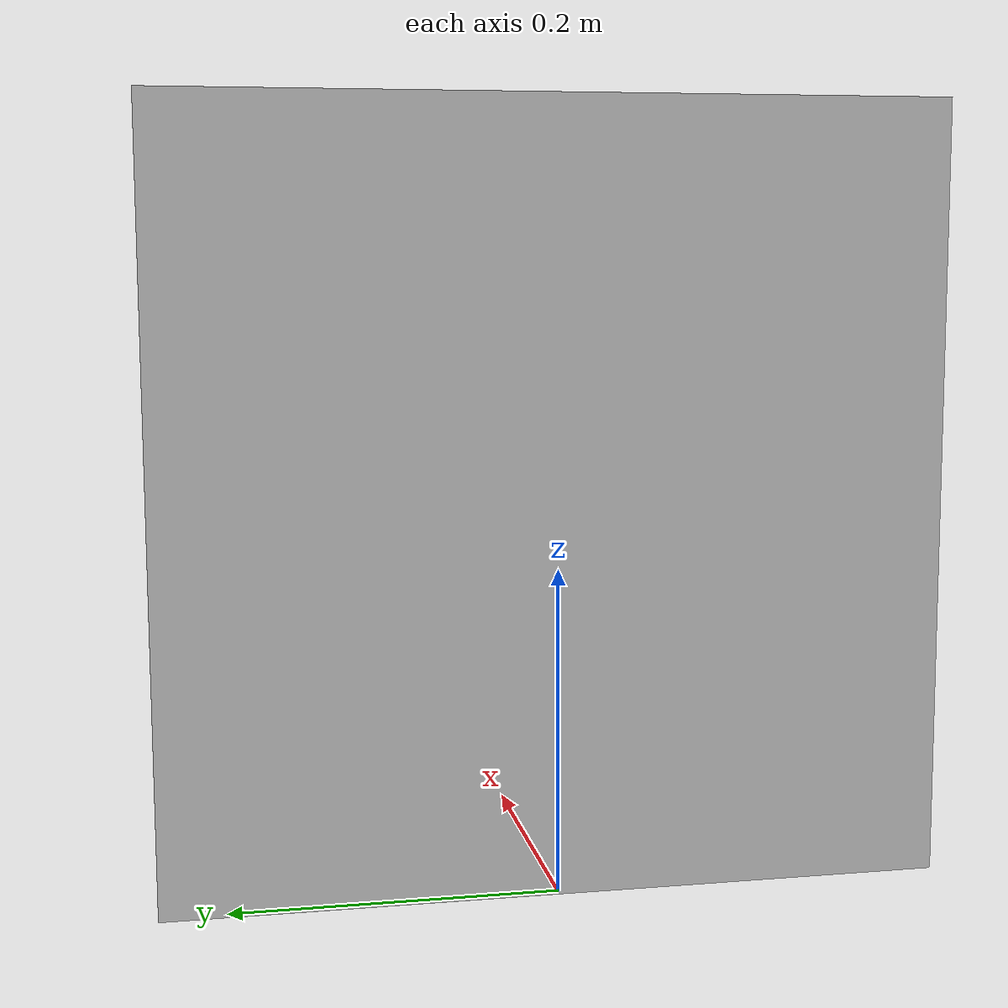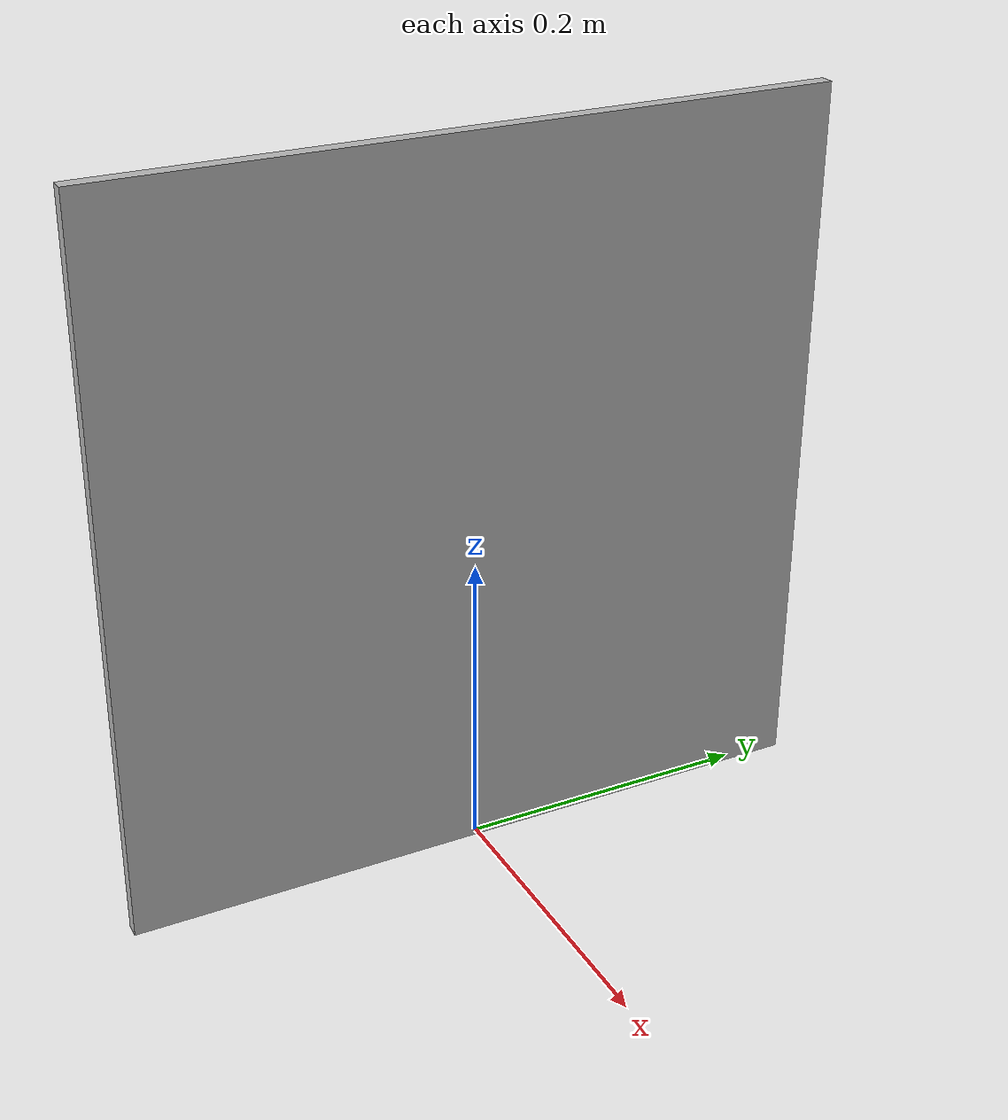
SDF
<?xml version="1.0" ?><sdf version="1.5">
  <model name="VTOL1">
    <static>true</static>
    <link name="link">
      <visual name="visual">
        <geometry>
          <mesh>
            <uri>model://vtol1/meshes/VTOL1.dae</uri>
          <scale>0.96 0.96 0.96</scale></mesh>
        </geometry>
      </visual>
    </link>
  </model>
</sdf>
